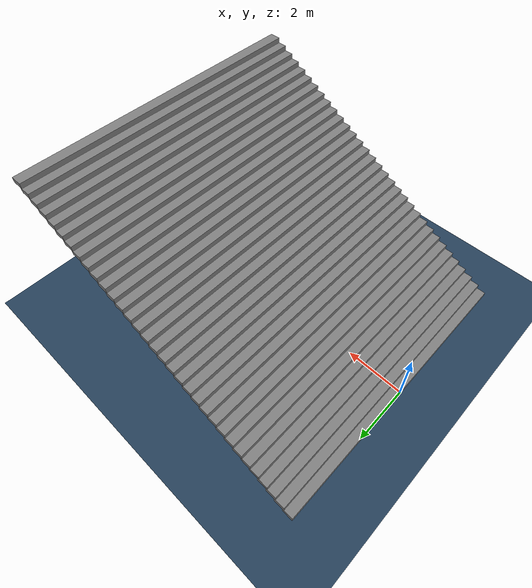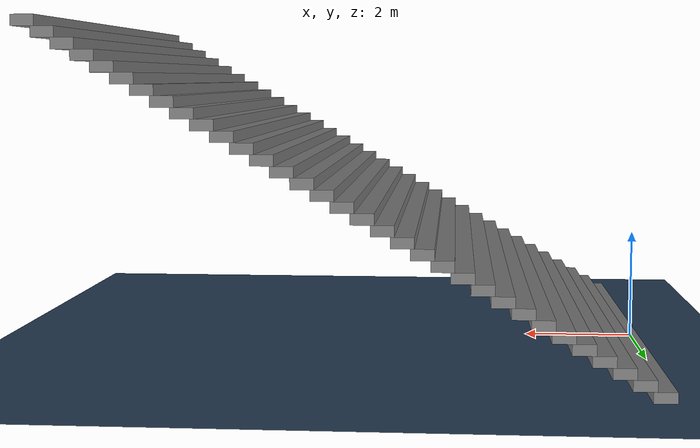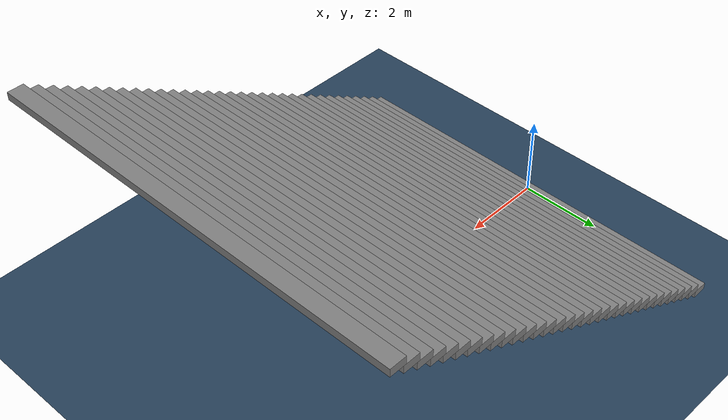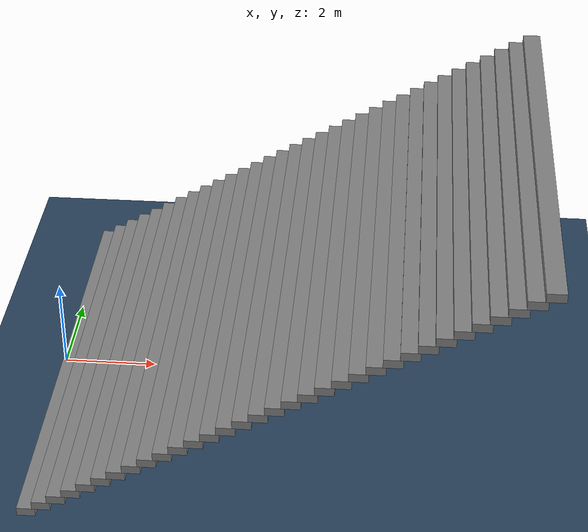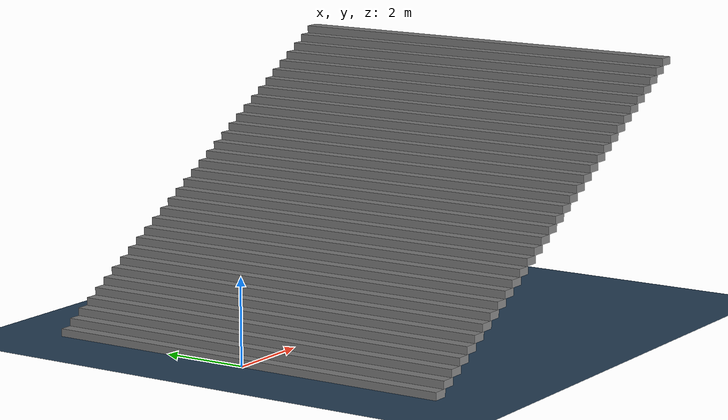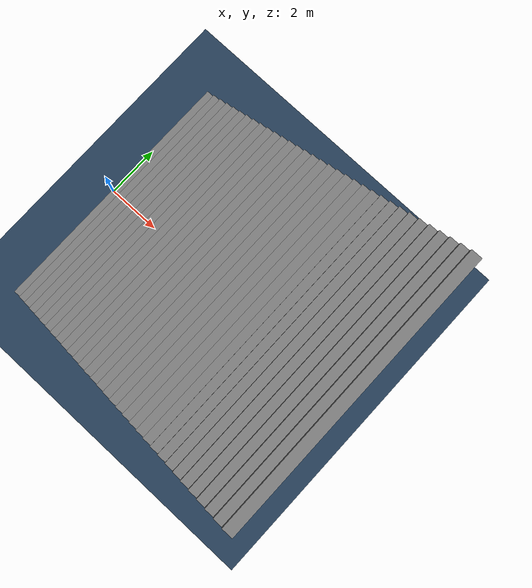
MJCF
<mujoco model="stairs_up_5">
  <!-- Terrain Type: stairs_up, Level: 5, Stairs step height: 0.1800 -->
  <statistic center="0 0 0.1" extent="0.8" />
  <visual>
    <headlight diffuse="0.6 0.6 0.6" ambient="0.3 0.3 0.3" specular="0 0 0" />
    <rgba haze="0.15 0.25 0.35 1" />
    <global azimuth="-130" elevation="-20" />
  </visual>
  <asset>
    <texture type="skybox" builtin="gradient" rgb1="0.3 0.5 0.7" rgb2="0 0 0" width="512" height="3072" />
    <texture type="2d" name="groundplane" builtin="checker" mark="edge" rgb1="0.2 0.3 0.4" rgb2="0.1 0.2 0.3" markrgb="0.8 0.8 0.8" width="300" height="300" />
    <material name="groundplane" texture="groundplane" texuniform="true" texrepeat="5 5" reflectance="0.0" />
  </asset>
  <worldbody>
    <light pos="0 0 1.5" dir="0 0 -1" directional="true" />
    <geom name="floor" size="0 0 0.05" type="plane" material="groundplane" />
    <geom pos="0.155 0.0 0.09000000000000001" type="box" size="0.186 5.0 0.09000000000000001" quat="1.0 0.0 0.0 0.0" />
    <geom pos="0.46499999999999997 0.0 0.27" type="box" size="0.186 5.0 0.09000000000000001" quat="1.0 0.0 0.0 0.0" />
    <geom pos="0.7749999999999999 0.0 0.45000000000000007" type="box" size="0.186 5.0 0.09000000000000001" quat="1.0 0.0 0.0 0.0" />
    <geom pos="1.085 0.0 0.6300000000000001" type="box" size="0.186 5.0 0.09000000000000001" quat="1.0 0.0 0.0 0.0" />
    <geom pos="1.395 0.0 0.8100000000000002" type="box" size="0.186 5.0 0.09000000000000001" quat="1.0 0.0 0.0 0.0" />
    <geom pos="1.705 0.0 0.9900000000000002" type="box" size="0.186 5.0 0.09000000000000001" quat="1.0 0.0 0.0 0.0" />
    <geom pos="2.015 0.0 1.1700000000000002" type="box" size="0.186 5.0 0.09000000000000001" quat="1.0 0.0 0.0 0.0" />
    <geom pos="2.325 0.0 1.35" type="box" size="0.186 5.0 0.09000000000000001" quat="1.0 0.0 0.0 0.0" />
    <geom pos="2.6350000000000002 0.0 1.53" type="box" size="0.186 5.0 0.09000000000000001" quat="1.0 0.0 0.0 0.0" />
    <geom pos="2.9450000000000003 0.0 1.71" type="box" size="0.186 5.0 0.09000000000000001" quat="1.0 0.0 0.0 0.0" />
    <geom pos="3.2550000000000003 0.0 1.89" type="box" size="0.186 5.0 0.09000000000000001" quat="1.0 0.0 0.0 0.0" />
    <geom pos="3.5650000000000004 0.0 2.07" type="box" size="0.186 5.0 0.09000000000000001" quat="1.0 0.0 0.0 0.0" />
    <geom pos="3.8750000000000004 0.0 2.25" type="box" size="0.186 5.0 0.09000000000000001" quat="1.0 0.0 0.0 0.0" />
    <geom pos="4.1850000000000005 0.0 2.43" type="box" size="0.186 5.0 0.09000000000000001" quat="1.0 0.0 0.0 0.0" />
    <geom pos="4.495 0.0 2.6100000000000003" type="box" size="0.186 5.0 0.09000000000000001" quat="1.0 0.0 0.0 0.0" />
    <geom pos="4.805 0.0 2.7900000000000005" type="box" size="0.186 5.0 0.09000000000000001" quat="1.0 0.0 0.0 0.0" />
    <geom pos="5.114999999999999 0.0 2.9700000000000006" type="box" size="0.186 5.0 0.09000000000000001" quat="1.0 0.0 0.0 0.0" />
    <geom pos="5.424999999999999 0.0 3.150000000000001" type="box" size="0.186 5.0 0.09000000000000001" quat="1.0 0.0 0.0 0.0" />
    <geom pos="5.7349999999999985 0.0 3.330000000000001" type="box" size="0.186 5.0 0.09000000000000001" quat="1.0 0.0 0.0 0.0" />
    <geom pos="6.044999999999998 0.0 3.510000000000001" type="box" size="0.186 5.0 0.09000000000000001" quat="1.0 0.0 0.0 0.0" />
    <geom pos="6.354999999999998 0.0 3.6900000000000013" type="box" size="0.186 5.0 0.09000000000000001" quat="1.0 0.0 0.0 0.0" />
    <geom pos="6.664999999999997 0.0 3.8700000000000014" type="box" size="0.186 5.0 0.09000000000000001" quat="1.0 0.0 0.0 0.0" />
    <geom pos="6.974999999999997 0.0 4.050000000000002" type="box" size="0.186 5.0 0.09000000000000001" quat="1.0 0.0 0.0 0.0" />
    <geom pos="7.284999999999997 0.0 4.230000000000001" type="box" size="0.186 5.0 0.09000000000000001" quat="1.0 0.0 0.0 0.0" />
    <geom pos="7.594999999999996 0.0 4.410000000000001" type="box" size="0.186 5.0 0.09000000000000001" quat="1.0 0.0 0.0 0.0" />
    <geom pos="7.904999999999996 0.0 4.590000000000001" type="box" size="0.186 5.0 0.09000000000000001" quat="1.0 0.0 0.0 0.0" />
    <geom pos="8.214999999999996 0.0 4.7700000000000005" type="box" size="0.186 5.0 0.09000000000000001" quat="1.0 0.0 0.0 0.0" />
    <geom pos="8.524999999999997 0.0 4.95" type="box" size="0.186 5.0 0.09000000000000001" quat="1.0 0.0 0.0 0.0" />
    <geom pos="8.834999999999997 0.0 5.13" type="box" size="0.186 5.0 0.09000000000000001" quat="1.0 0.0 0.0 0.0" />
    <geom pos="9.144999999999998 0.0 5.31" type="box" size="0.186 5.0 0.09000000000000001" quat="1.0 0.0 0.0 0.0" />
    <geom pos="9.454999999999998 0.0 5.489999999999999" type="box" size="0.186 5.0 0.09000000000000001" quat="1.0 0.0 0.0 0.0" />
    <geom pos="9.764999999999999 0.0 5.669999999999999" type="box" size="0.186 5.0 0.09000000000000001" quat="1.0 0.0 0.0 0.0" />
    <geom pos="10.075 0.0 5.849999999999999" type="box" size="0.186 5.0 0.09000000000000001" quat="1.0 0.0 0.0 0.0" />
  </worldbody>
</mujoco>
